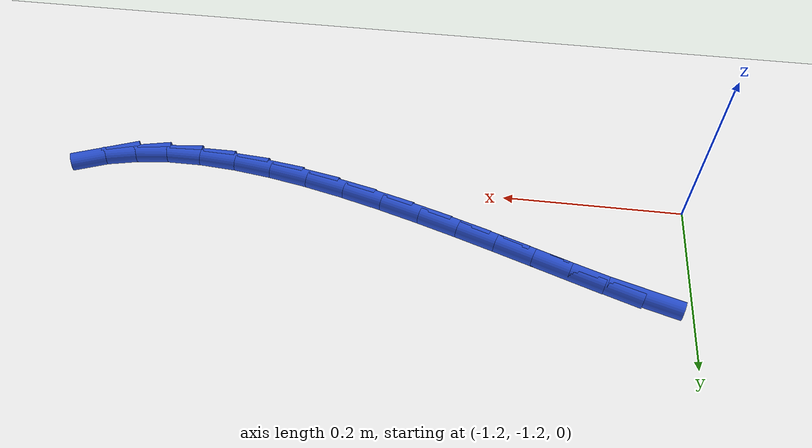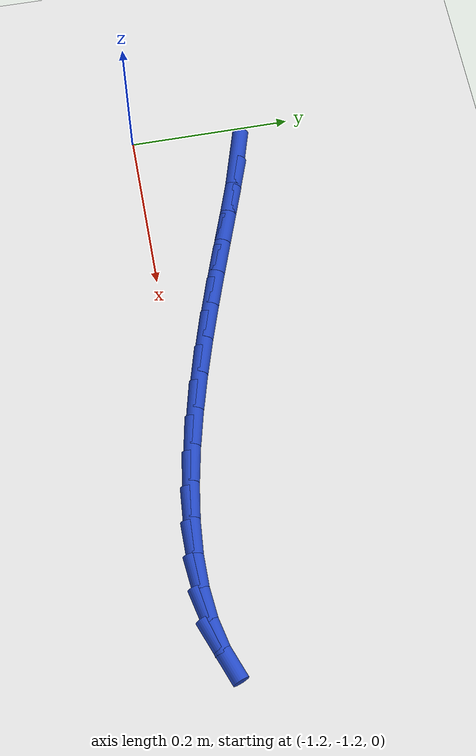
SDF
<sdf version="1.6">
 <world name="default">
  <model name="ground_plane">
   <static>1</static>
   <link name="link">
    <collision name="collision">
     <geometry><plane><normal>0 0 1</normal><size>100 100</size></plane></geometry>
     <surface><friction><ode><mu>100</mu><mu2>50</mu2></ode></friction></surface>
    </collision>
    <visual name="visual">
     <cast_shadows>0</cast_shadows>
     <geometry><plane><normal>0 0 1</normal><size>100 100</size></plane></geometry>
     <material>
      <script><uri>file://media/materials/scripts/gazebo.material</uri><name>Gazebo/WhiteGlow</name></script>
     </material>
    </visual>
   </link>
  </model>
  <model name="line">
   <link name="link_142">
    <pose>-1.1494664397274101 -1.0736847642536265 0.01 0 1.57 -0.2916163714404004</pose>
    <collision name="collision">
     <geometry><cylinder><radius>0.01</radius><length>0.08</length></cylinder></geometry>
    </collision>
    <visual name="visual">
     <material>
      <script><name>Gazebo/Blue</name><uri>file://media/materials/scripts/gazebo.material</uri></script>
     </material>
     <geometry><cylinder><radius>0.01</radius><length>0.08</length></cylinder></geometry>
    </visual>
   </link>
   <link name="link_143">
    <pose>-1.1107199385810331 -1.0853154544436223 0.01 0 1.57 -0.3378968000619626</pose>
    <collision name="collision">
     <geometry><cylinder><radius>0.01</radius><length>0.08</length></cylinder></geometry>
    </collision>
    <visual name="visual">
     <material>
      <script><name>Gazebo/Blue</name><uri>file://media/materials/scripts/gazebo.material</uri></script>
     </material>
     <geometry><cylinder><radius>0.01</radius><length>0.08</length></cylinder></geometry>
    </visual>
   </link>
   <link name="link_144">
    <pose>-1.071715320209137 -1.0990205953864072 0.01 0 1.57 -0.3460957991966053</pose>
    <collision name="collision">
     <geometry><cylinder><radius>0.01</radius><length>0.08</length></cylinder></geometry>
    </collision>
    <visual name="visual">
     <material>
      <script><name>Gazebo/Blue</name><uri>file://media/materials/scripts/gazebo.material</uri></script>
     </material>
     <geometry><cylinder><radius>0.01</radius><length>0.08</length></cylinder></geometry>
    </visual>
   </link>
   <link name="link_145">
    <pose>-1.03129397318627 -1.1135969514719422 0.01 0 1.57 -0.34366215102632186</pose>
    <collision name="collision">
     <geometry><cylinder><radius>0.01</radius><length>0.08</length></cylinder></geometry>
    </collision>
    <visual name="visual">
     <material>
      <script><name>Gazebo/Blue</name><uri>file://media/materials/scripts/gazebo.material</uri></script>
     </material>
     <geometry><cylinder><radius>0.01</radius><length>0.08</length></cylinder></geometry>
    </visual>
   </link>
   <link name="link_146">
    <pose>-0.9895724840173604 -1.1285275135771724 0.01 0 1.57 -0.3353440207201862</pose>
    <collision name="collision">
     <geometry><cylinder><radius>0.01</radius><length>0.08</length></cylinder></geometry>
    </collision>
    <visual name="visual">
     <material>
      <script><name>Gazebo/Blue</name><uri>file://media/materials/scripts/gazebo.material</uri></script>
     </material>
     <geometry><cylinder><radius>0.01</radius><length>0.08</length></cylinder></geometry>
    </visual>
   </link>
   <link name="link_147">
    <pose>-0.9468760289005169 -1.1434075216416855 0.01 0 1.57 -0.32125103025248375</pose>
    <collision name="collision">
     <geometry><cylinder><radius>0.01</radius><length>0.08</length></cylinder></geometry>
    </collision>
    <visual name="visual">
     <material>
      <script><name>Gazebo/Blue</name><uri>file://media/materials/scripts/gazebo.material</uri></script>
     </material>
     <geometry><cylinder><radius>0.01</radius><length>0.08</length></cylinder></geometry>
    </visual>
   </link>
   <link name="link_148">
    <pose>-0.9035297840338472 -1.1578322156050695 0.01 0 1.57 -0.3011623947127701</pose>
    <collision name="collision">
     <geometry><cylinder><radius>0.01</radius><length>0.08</length></cylinder></geometry>
    </collision>
    <visual name="visual">
     <material>
      <script><name>Gazebo/Blue</name><uri>file://media/materials/scripts/gazebo.material</uri></script>
     </material>
     <geometry><cylinder><radius>0.01</radius><length>0.08</length></cylinder></geometry>
    </visual>
   </link>
   <link name="link_149">
    <pose>-0.8598589256154588 -1.1713968354069129 0.01 0 1.57 -0.27453908358247014</pose>
    <collision name="collision">
     <geometry><cylinder><radius>0.01</radius><length>0.08</length></cylinder></geometry>
    </collision>
    <visual name="visual">
     <material>
      <script><name>Gazebo/Blue</name><uri>file://media/materials/scripts/gazebo.material</uri></script>
     </material>
     <geometry><cylinder><radius>0.01</radius><length>0.08</length></cylinder></geometry>
    </visual>
   </link>
   <link name="link_150">
    <pose>-0.8161886298434595 -1.183696620986803 0.01 0 1.57 -0.2405017688727954</pose>
    <collision name="collision">
     <geometry><cylinder><radius>0.01</radius><length>0.08</length></cylinder></geometry>
    </collision>
    <visual name="visual">
     <material>
      <script><name>Gazebo/Blue</name><uri>file://media/materials/scripts/gazebo.material</uri></script>
     </material>
     <geometry><cylinder><radius>0.01</radius><length>0.08</length></cylinder></geometry>
    </visual>
   </link>
   <link name="link_151">
    <pose>-0.7728440729159571 -1.1943268122843285 0.01 0 1.57 -0.19778084642584093</pose>
    <collision name="collision">
     <geometry><cylinder><radius>0.01</radius><length>0.08</length></cylinder></geometry>
    </collision>
    <visual name="visual">
     <material>
      <script><name>Gazebo/Blue</name><uri>file://media/materials/scripts/gazebo.material</uri></script>
     </material>
     <geometry><cylinder><radius>0.01</radius><length>0.08</length></cylinder></geometry>
    </visual>
   </link>
   <link name="link_152">
    <pose>-0.73015043103106 -1.2028826492390765 0.01 0 1.57 -0.14464615327892025</pose>
    <collision name="collision">
     <geometry><cylinder><radius>0.01</radius><length>0.08</length></cylinder></geometry>
    </collision>
    <visual name="visual">
     <material>
      <script><name>Gazebo/Blue</name><uri>file://media/materials/scripts/gazebo.material</uri></script>
     </material>
     <geometry><cylinder><radius>0.01</radius><length>0.08</length></cylinder></geometry>
    </visual>
   </link>
   <link name="link_153">
    <pose>-0.688432880386874 -1.2089593717906362 0.01 0 1.57 -0.07883532494968006</pose>
    <collision name="collision">
     <geometry><cylinder><radius>0.01</radius><length>0.08</length></cylinder></geometry>
    </collision>
    <visual name="visual">
     <material>
      <script><name>Gazebo/Blue</name><uri>file://media/materials/scripts/gazebo.material</uri></script>
     </material>
     <geometry><cylinder><radius>0.01</radius><length>0.08</length></cylinder></geometry>
    </visual>
   </link>
   <link name="link_154">
    <pose>-0.6480165971815077 -1.2121522198785943 0.01 0 1.57 0.0024693642053135526</pose>
    <collision name="collision">
     <geometry><cylinder><radius>0.01</radius><length>0.08</length></cylinder></geometry>
    </collision>
    <visual name="visual">
     <material>
      <script><name>Gazebo/Blue</name><uri>file://media/materials/scripts/gazebo.material</uri></script>
     </material>
     <geometry><cylinder><radius>0.01</radius><length>0.08</length></cylinder></geometry>
    </visual>
   </link>
   <link name="link_155">
    <pose>-0.6092267576130688 -1.2120564334425399 0.01 0 1.57 0.10249957318557777</pose>
    <collision name="collision">
     <geometry><cylinder><radius>0.01</radius><length>0.08</length></cylinder></geometry>
    </collision>
    <visual name="visual">
     <material>
      <script><name>Gazebo/Blue</name><uri>file://media/materials/scripts/gazebo.material</uri></script>
     </material>
     <geometry><cylinder><radius>0.01</radius><length>0.08</length></cylinder></geometry>
    </visual>
   </link>
   <link name="link_156">
    <pose>-0.5723885378796653 -1.208267252422061 0.01 0 1.57 0.22436967023644025</pose>
    <collision name="collision">
     <geometry><cylinder><radius>0.01</radius><length>0.08</length></cylinder></geometry>
    </collision>
    <visual name="visual">
     <material>
      <script><name>Gazebo/Blue</name><uri>file://media/materials/scripts/gazebo.material</uri></script>
     </material>
     <geometry><cylinder><radius>0.01</radius><length>0.08</length></cylinder></geometry>
    </visual>
   </link>
   <link name="link_157">
    <pose>-0.5378271141794043 -1.2003799167567448 0.01 0 1.57 0.36984649818118226</pose>
    <collision name="collision">
     <geometry><cylinder><radius>0.01</radius><length>0.08</length></cylinder></geometry>
    </collision>
    <visual name="visual">
     <material>
      <script><name>Gazebo/Blue</name><uri>file://media/materials/scripts/gazebo.material</uri></script>
     </material>
     <geometry><cylinder><radius>0.01</radius><length>0.08</length></cylinder></geometry>
    </visual>
   </link>
  </model>
 </world>
</sdf>
